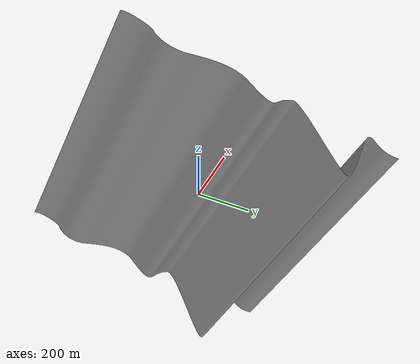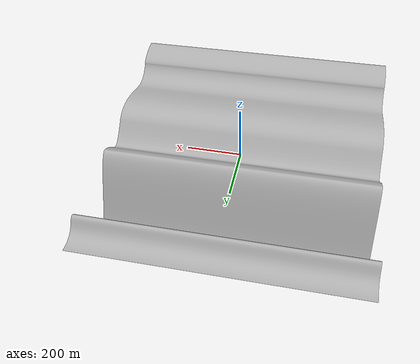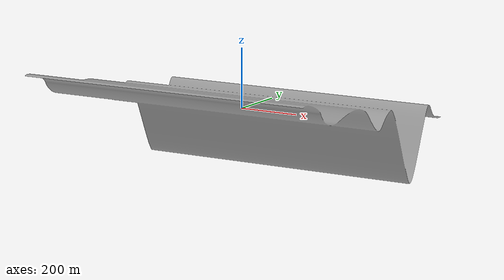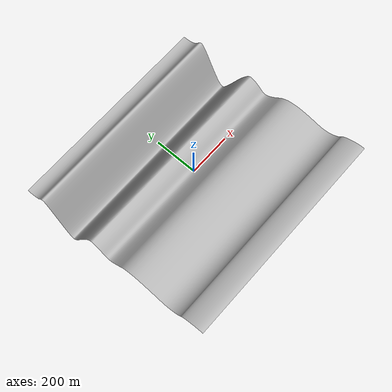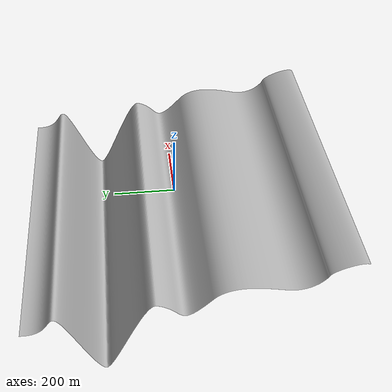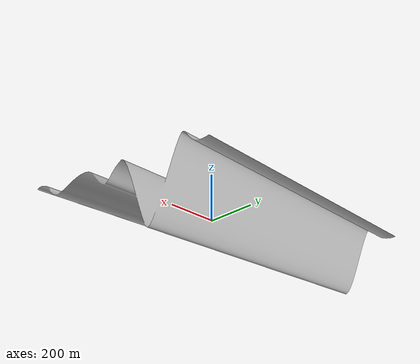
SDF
<sdf version="1.5">
  <model name="wavy_ground">
    <link name="wavy_ground">
      <static>false</static>
      <collision name="wavy_ground">
        <pose>0 0 -10 0 0 0</pose>
        <geometry>
          <mesh>
            <uri>model://wavy_ground/meshes/wavy_ground.dae</uri>
            <scale>200 200 200</scale>
          </mesh>
        </geometry>

      </collision>

      <visual name="wavy_ground">
        <pose>0 0 -10 0 0 0</pose>
        <cast_shadows>false</cast_shadows>
        <geometry>
          <mesh>
            <uri>model://wavy_ground/meshes/wavy_ground.dae</uri>
            <scale>200 200 200</scale>

          </mesh>
        </geometry>

      </visual>

       <kinematic>1</kinematic>
     </link>
  </model>
</sdf>
